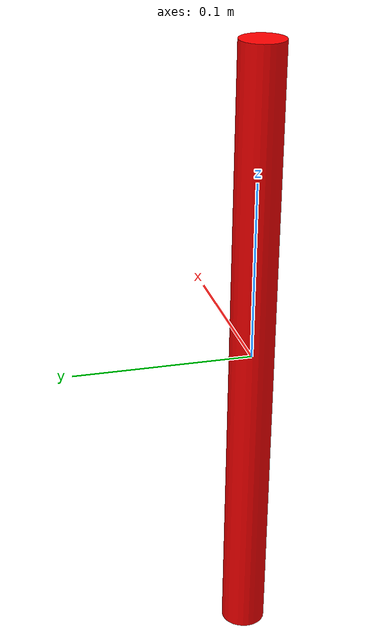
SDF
<?xml version="1.0" ?>
<sdf version="1.6">
  <model name="red_cylinder">
    <static>false</static>
    <link name="link">
      <inertial>
        <mass>0.050</mass>
        <inertia>
          <ixx>0.000000204</ixx>
          <ixy>0</ixy>
          <ixz>0</ixz>
          <iyy>0.000000204</iyy>
          <iyz>0</iyz>
          <izz>0.000000039</izz>
        </inertia>
      </inertial>
      <collision name="collision">
        <geometry>
          <cylinder>
            <radius>0.015</radius>
            <length>0.35</length>
          </cylinder>
        </geometry>
        <surface>
          <friction>
            <ode>
              <mu>1.2</mu> <!-- Increased friction coefficient -->
              <mu2>1.2</mu2> <!-- Increased friction coefficient -->
              <fdir1>0 0 1</fdir1>
              <slip1>0.0005</slip1> <!-- Reduced slip -->
              <slip2>0.0005</slip2> <!-- Reduced slip -->
            </ode>
            <torsional>
              <coefficient>0.1</coefficient>
              <surface_radius>0.015</surface_radius>
              <use_patch_radius>true</use_patch_radius>
            </torsional>
          </friction>
          <contact>
            <ode>
              <kp>1e5</kp>
              <kd>10</kd>
              <max_vel>0.1</max_vel>
              <min_depth>0.001</min_depth>
              <soft_cfm>0.01</soft_cfm>
              <soft_erp>0.2</soft_erp>
            </ode>
          </contact>
          <bounce>
            <restitution_coefficient>0.2</restitution_coefficient>
            <threshold>0.01</threshold>
          </bounce>
        </surface>
      </collision>
      <visual name="visual">
        <geometry>
          <cylinder>
            <radius>0.0125</radius>
            <length>0.35</length>
          </cylinder>
        </geometry>
        <material>
          <ambient>1.0 0.0 0.0 1</ambient>
          <diffuse>1.0 0.0 0.0 1</diffuse>
          <specular>0.5 0.5 0.5 1</specular>
          <emissive>0.1 0 0 1</emissive>
        </material>
      </visual>
    </link>
  </model>
</sdf>
